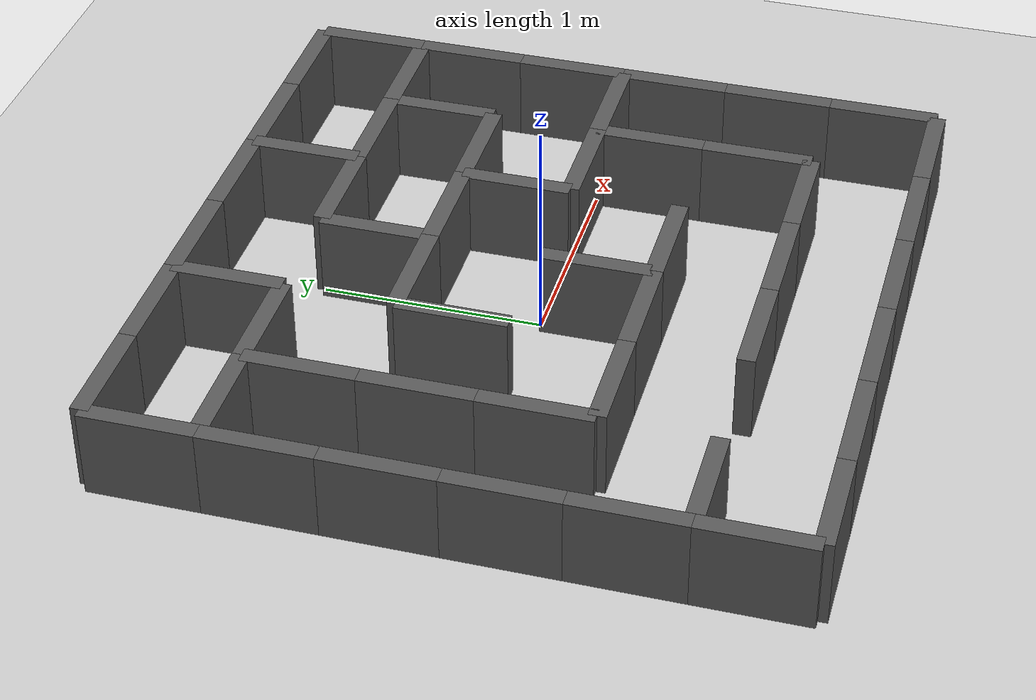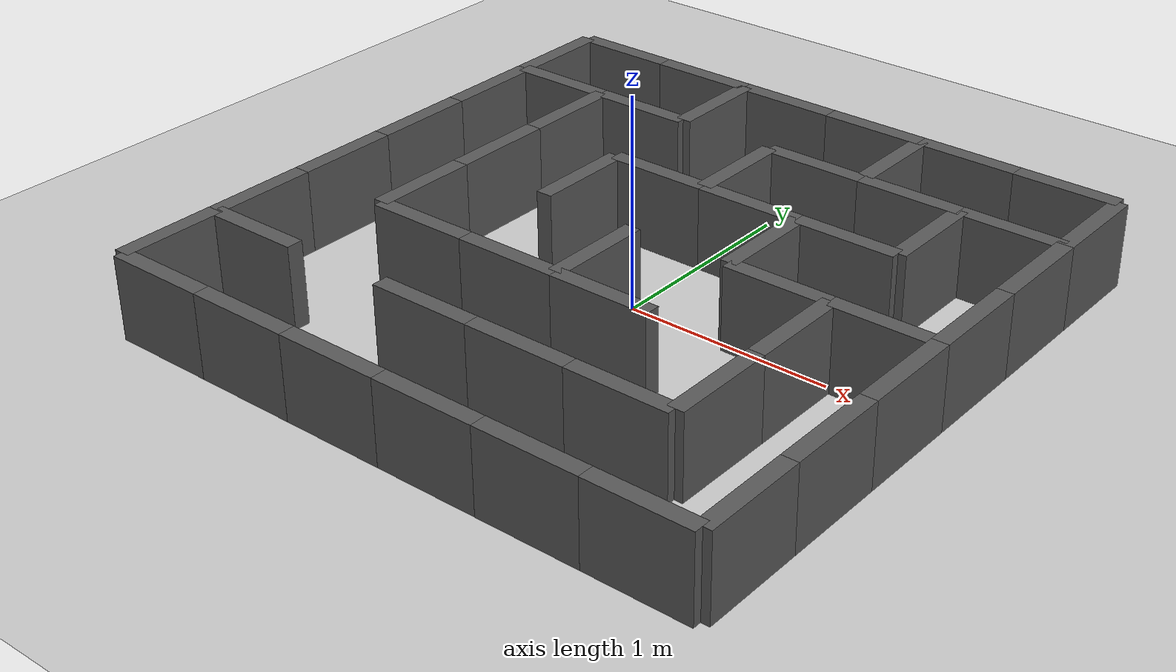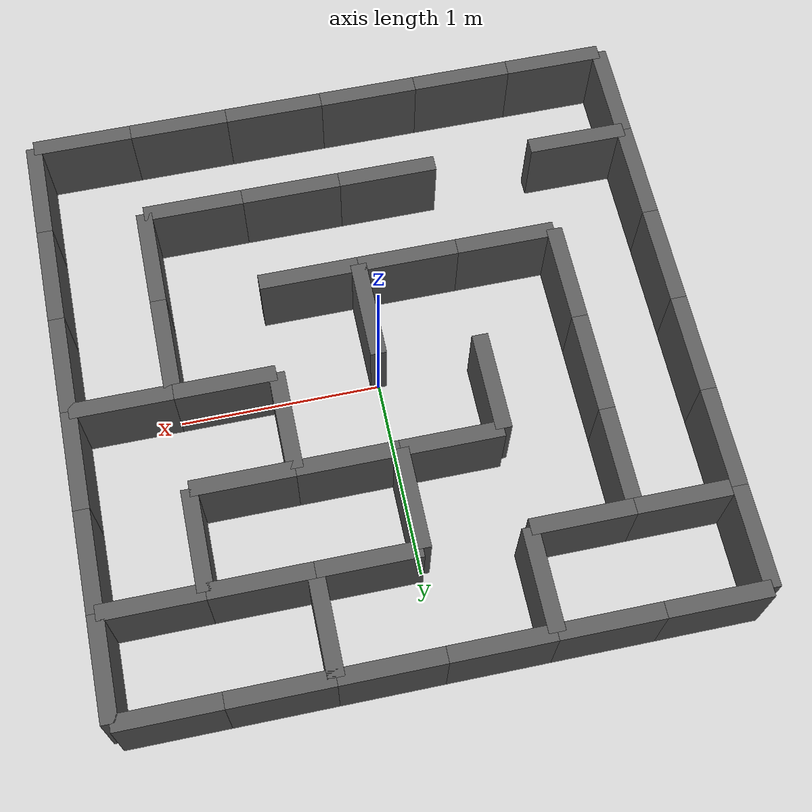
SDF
<?xml version="1.0" ?>
<sdf version="1.8">
  <world name="maze_world">
    <plugin filename="gz-sim-physics-system"
      name="gz::sim::systems::Physics"/>
    <plugin filename="gz-sim-user-commands-system"
      name="gz::sim::systems::UserCommands"/>
    <plugin filename="gz-sim-scene-broadcaster-system"
      name="gz::sim::systems::SceneBroadcaster"/>
    <plugin filename="gz-sim-sensors-system"
      name="gz::sim::systems::Sensors">
      <render_engine>ogre2</render_engine>
    </plugin>
    <physics name="1ms" type="ignored">
      <max_step_size>0.001</max_step_size>
      <real_time_factor>1.0</real_time_factor>
    </physics>
    <light type="directional" name="sun">
      <cast_shadows>true</cast_shadows>
      <pose>0 0 10 0 0 0</pose>
      <diffuse>0.8 0.8 0.8 1</diffuse>
      <specular>0.2 0.2 0.2 1</specular>
      <direction>-0.5 0.1 -0.9</direction>
    </light>
    <model name="ground_plane">
      <static>true</static>
      <link name="link">
        <collision name="collision"><geometry><plane><normal>0 0 1</normal><size>100 100</size></plane></geometry></collision>
        <visual name="visual"><geometry><plane><normal>0 0 1</normal><size>100 100</size></plane></geometry>
          <material><ambient>0.8 0.8 0.8 1</ambient><diffuse>0.8 0.8 0.8 1</diffuse></material>
        </visual>
      </link>
    </model>
    <!-- Assignment Figure 1: six by six cells, each 0.5 m wide. -->
    <model name="wall_00">
      <static>true</static>
      <pose>-1.25 1.50 0.2 0 0 0</pose>
      <link name="link">
        <collision name="collision"><geometry><box><size>0.5 0.08 0.4</size></box></geometry></collision>
        <visual name="visual"><geometry><box><size>0.5 0.08 0.4</size></box></geometry>
          <material><ambient>0.25 0.25 0.25 1</ambient><diffuse>0.35 0.35 0.35 1</diffuse></material>
        </visual>
      </link>
    </model>
    <model name="wall_01">
      <static>true</static>
      <pose>-1.25 -1.50 0.2 0 0 0</pose>
      <link name="link">
        <collision name="collision"><geometry><box><size>0.5 0.08 0.4</size></box></geometry></collision>
        <visual name="visual"><geometry><box><size>0.5 0.08 0.4</size></box></geometry>
          <material><ambient>0.25 0.25 0.25 1</ambient><diffuse>0.35 0.35 0.35 1</diffuse></material>
        </visual>
      </link>
    </model>
    <model name="wall_02">
      <static>true</static>
      <pose>-0.75 1.50 0.2 0 0 0</pose>
      <link name="link">
        <collision name="collision"><geometry><box><size>0.5 0.08 0.4</size></box></geometry></collision>
        <visual name="visual"><geometry><box><size>0.5 0.08 0.4</size></box></geometry>
          <material><ambient>0.25 0.25 0.25 1</ambient><diffuse>0.35 0.35 0.35 1</diffuse></material>
        </visual>
      </link>
    </model>
    <model name="wall_03">
      <static>true</static>
      <pose>-0.75 -1.50 0.2 0 0 0</pose>
      <link name="link">
        <collision name="collision"><geometry><box><size>0.5 0.08 0.4</size></box></geometry></collision>
        <visual name="visual"><geometry><box><size>0.5 0.08 0.4</size></box></geometry>
          <material><ambient>0.25 0.25 0.25 1</ambient><diffuse>0.35 0.35 0.35 1</diffuse></material>
        </visual>
      </link>
    </model>
    <model name="wall_04">
      <static>true</static>
      <pose>-0.25 1.50 0.2 0 0 0</pose>
      <link name="link">
        <collision name="collision"><geometry><box><size>0.5 0.08 0.4</size></box></geometry></collision>
        <visual name="visual"><geometry><box><size>0.5 0.08 0.4</size></box></geometry>
          <material><ambient>0.25 0.25 0.25 1</ambient><diffuse>0.35 0.35 0.35 1</diffuse></material>
        </visual>
      </link>
    </model>
    <model name="wall_05">
      <static>true</static>
      <pose>-0.25 -1.50 0.2 0 0 0</pose>
      <link name="link">
        <collision name="collision"><geometry><box><size>0.5 0.08 0.4</size></box></geometry></collision>
        <visual name="visual"><geometry><box><size>0.5 0.08 0.4</size></box></geometry>
          <material><ambient>0.25 0.25 0.25 1</ambient><diffuse>0.35 0.35 0.35 1</diffuse></material>
        </visual>
      </link>
    </model>
    <model name="wall_06">
      <static>true</static>
      <pose>0.25 1.50 0.2 0 0 0</pose>
      <link name="link">
        <collision name="collision"><geometry><box><size>0.5 0.08 0.4</size></box></geometry></collision>
        <visual name="visual"><geometry><box><size>0.5 0.08 0.4</size></box></geometry>
          <material><ambient>0.25 0.25 0.25 1</ambient><diffuse>0.35 0.35 0.35 1</diffuse></material>
        </visual>
      </link>
    </model>
    <model name="wall_07">
      <static>true</static>
      <pose>0.25 -1.50 0.2 0 0 0</pose>
      <link name="link">
        <collision name="collision"><geometry><box><size>0.5 0.08 0.4</size></box></geometry></collision>
        <visual name="visual"><geometry><box><size>0.5 0.08 0.4</size></box></geometry>
          <material><ambient>0.25 0.25 0.25 1</ambient><diffuse>0.35 0.35 0.35 1</diffuse></material>
        </visual>
      </link>
    </model>
    <model name="wall_08">
      <static>true</static>
      <pose>0.75 1.50 0.2 0 0 0</pose>
      <link name="link">
        <collision name="collision"><geometry><box><size>0.5 0.08 0.4</size></box></geometry></collision>
        <visual name="visual"><geometry><box><size>0.5 0.08 0.4</size></box></geometry>
          <material><ambient>0.25 0.25 0.25 1</ambient><diffuse>0.35 0.35 0.35 1</diffuse></material>
        </visual>
      </link>
    </model>
    <model name="wall_09">
      <static>true</static>
      <pose>0.75 -1.50 0.2 0 0 0</pose>
      <link name="link">
        <collision name="collision"><geometry><box><size>0.5 0.08 0.4</size></box></geometry></collision>
        <visual name="visual"><geometry><box><size>0.5 0.08 0.4</size></box></geometry>
          <material><ambient>0.25 0.25 0.25 1</ambient><diffuse>0.35 0.35 0.35 1</diffuse></material>
        </visual>
      </link>
    </model>
    <model name="wall_10">
      <static>true</static>
      <pose>1.25 1.50 0.2 0 0 0</pose>
      <link name="link">
        <collision name="collision"><geometry><box><size>0.5 0.08 0.4</size></box></geometry></collision>
        <visual name="visual"><geometry><box><size>0.5 0.08 0.4</size></box></geometry>
          <material><ambient>0.25 0.25 0.25 1</ambient><diffuse>0.35 0.35 0.35 1</diffuse></material>
        </visual>
      </link>
    </model>
    <model name="wall_11">
      <static>true</static>
      <pose>1.25 -1.50 0.2 0 0 0</pose>
      <link name="link">
        <collision name="collision"><geometry><box><size>0.5 0.08 0.4</size></box></geometry></collision>
        <visual name="visual"><geometry><box><size>0.5 0.08 0.4</size></box></geometry>
          <material><ambient>0.25 0.25 0.25 1</ambient><diffuse>0.35 0.35 0.35 1</diffuse></material>
        </visual>
      </link>
    </model>
    <model name="wall_12">
      <static>true</static>
      <pose>-1.25 1.00 0.2 0 0 0</pose>
      <link name="link">
        <collision name="collision"><geometry><box><size>0.5 0.08 0.4</size></box></geometry></collision>
        <visual name="visual"><geometry><box><size>0.5 0.08 0.4</size></box></geometry>
          <material><ambient>0.25 0.25 0.25 1</ambient><diffuse>0.35 0.35 0.35 1</diffuse></material>
        </visual>
      </link>
    </model>
    <model name="wall_13">
      <static>true</static>
      <pose>-0.75 1.00 0.2 0 0 0</pose>
      <link name="link">
        <collision name="collision"><geometry><box><size>0.5 0.08 0.4</size></box></geometry></collision>
        <visual name="visual"><geometry><box><size>0.5 0.08 0.4</size></box></geometry>
          <material><ambient>0.25 0.25 0.25 1</ambient><diffuse>0.35 0.35 0.35 1</diffuse></material>
        </visual>
      </link>
    </model>
    <model name="wall_14">
      <static>true</static>
      <pose>0.25 1.00 0.2 0 0 0</pose>
      <link name="link">
        <collision name="collision"><geometry><box><size>0.5 0.08 0.4</size></box></geometry></collision>
        <visual name="visual"><geometry><box><size>0.5 0.08 0.4</size></box></geometry>
          <material><ambient>0.25 0.25 0.25 1</ambient><diffuse>0.35 0.35 0.35 1</diffuse></material>
        </visual>
      </link>
    </model>
    <model name="wall_15">
      <static>true</static>
      <pose>0.75 1.00 0.2 0 0 0</pose>
      <link name="link">
        <collision name="collision"><geometry><box><size>0.5 0.08 0.4</size></box></geometry></collision>
        <visual name="visual"><geometry><box><size>0.5 0.08 0.4</size></box></geometry>
          <material><ambient>0.25 0.25 0.25 1</ambient><diffuse>0.35 0.35 0.35 1</diffuse></material>
        </visual>
      </link>
    </model>
    <model name="wall_16">
      <static>true</static>
      <pose>1.25 1.00 0.2 0 0 0</pose>
      <link name="link">
        <collision name="collision"><geometry><box><size>0.5 0.08 0.4</size></box></geometry></collision>
        <visual name="visual"><geometry><box><size>0.5 0.08 0.4</size></box></geometry>
          <material><ambient>0.25 0.25 0.25 1</ambient><diffuse>0.35 0.35 0.35 1</diffuse></material>
        </visual>
      </link>
    </model>
    <model name="wall_17">
      <static>true</static>
      <pose>-0.25 0.50 0.2 0 0 0</pose>
      <link name="link">
        <collision name="collision"><geometry><box><size>0.5 0.08 0.4</size></box></geometry></collision>
        <visual name="visual"><geometry><box><size>0.5 0.08 0.4</size></box></geometry>
          <material><ambient>0.25 0.25 0.25 1</ambient><diffuse>0.35 0.35 0.35 1</diffuse></material>
        </visual>
      </link>
    </model>
    <model name="wall_18">
      <static>true</static>
      <pose>0.25 0.50 0.2 0 0 0</pose>
      <link name="link">
        <collision name="collision"><geometry><box><size>0.5 0.08 0.4</size></box></geometry></collision>
        <visual name="visual"><geometry><box><size>0.5 0.08 0.4</size></box></geometry>
          <material><ambient>0.25 0.25 0.25 1</ambient><diffuse>0.35 0.35 0.35 1</diffuse></material>
        </visual>
      </link>
    </model>
    <model name="wall_19">
      <static>true</static>
      <pose>0.75 0.50 0.2 0 0 0</pose>
      <link name="link">
        <collision name="collision"><geometry><box><size>0.5 0.08 0.4</size></box></geometry></collision>
        <visual name="visual"><geometry><box><size>0.5 0.08 0.4</size></box></geometry>
          <material><ambient>0.25 0.25 0.25 1</ambient><diffuse>0.35 0.35 0.35 1</diffuse></material>
        </visual>
      </link>
    </model>
    <model name="wall_20">
      <static>true</static>
      <pose>0.75 0.00 0.2 0 0 0</pose>
      <link name="link">
        <collision name="collision"><geometry><box><size>0.5 0.08 0.4</size></box></geometry></collision>
        <visual name="visual"><geometry><box><size>0.5 0.08 0.4</size></box></geometry>
          <material><ambient>0.25 0.25 0.25 1</ambient><diffuse>0.35 0.35 0.35 1</diffuse></material>
        </visual>
      </link>
    </model>
    <model name="wall_21">
      <static>true</static>
      <pose>1.25 0.00 0.2 0 0 0</pose>
      <link name="link">
        <collision name="collision"><geometry><box><size>0.5 0.08 0.4</size></box></geometry></collision>
        <visual name="visual"><geometry><box><size>0.5 0.08 0.4</size></box></geometry>
          <material><ambient>0.25 0.25 0.25 1</ambient><diffuse>0.35 0.35 0.35 1</diffuse></material>
        </visual>
      </link>
    </model>
    <model name="wall_22">
      <static>true</static>
      <pose>-0.75 -0.50 0.2 0 0 0</pose>
      <link name="link">
        <collision name="collision"><geometry><box><size>0.5 0.08 0.4</size></box></geometry></collision>
        <visual name="visual"><geometry><box><size>0.5 0.08 0.4</size></box></geometry>
          <material><ambient>0.25 0.25 0.25 1</ambient><diffuse>0.35 0.35 0.35 1</diffuse></material>
        </visual>
      </link>
    </model>
    <model name="wall_23">
      <static>true</static>
      <pose>-0.25 -0.50 0.2 0 0 0</pose>
      <link name="link">
        <collision name="collision"><geometry><box><size>0.5 0.08 0.4</size></box></geometry></collision>
        <visual name="visual"><geometry><box><size>0.5 0.08 0.4</size></box></geometry>
          <material><ambient>0.25 0.25 0.25 1</ambient><diffuse>0.35 0.35 0.35 1</diffuse></material>
        </visual>
      </link>
    </model>
    <model name="wall_24">
      <static>true</static>
      <pose>0.25 -0.50 0.2 0 0 0</pose>
      <link name="link">
        <collision name="collision"><geometry><box><size>0.5 0.08 0.4</size></box></geometry></collision>
        <visual name="visual"><geometry><box><size>0.5 0.08 0.4</size></box></geometry>
          <material><ambient>0.25 0.25 0.25 1</ambient><diffuse>0.35 0.35 0.35 1</diffuse></material>
        </visual>
      </link>
    </model>
    <model name="wall_25">
      <static>true</static>
      <pose>-1.25 -1.00 0.2 0 0 0</pose>
      <link name="link">
        <collision name="collision"><geometry><box><size>0.5 0.08 0.4</size></box></geometry></collision>
        <visual name="visual"><geometry><box><size>0.5 0.08 0.4</size></box></geometry>
          <material><ambient>0.25 0.25 0.25 1</ambient><diffuse>0.35 0.35 0.35 1</diffuse></material>
        </visual>
      </link>
    </model>
    <model name="wall_26">
      <static>true</static>
      <pose>-0.25 -1.00 0.2 0 0 0</pose>
      <link name="link">
        <collision name="collision"><geometry><box><size>0.5 0.08 0.4</size></box></geometry></collision>
        <visual name="visual"><geometry><box><size>0.5 0.08 0.4</size></box></geometry>
          <material><ambient>0.25 0.25 0.25 1</ambient><diffuse>0.35 0.35 0.35 1</diffuse></material>
        </visual>
      </link>
    </model>
    <model name="wall_27">
      <static>true</static>
      <pose>0.25 -1.00 0.2 0 0 0</pose>
      <link name="link">
        <collision name="collision"><geometry><box><size>0.5 0.08 0.4</size></box></geometry></collision>
        <visual name="visual"><geometry><box><size>0.5 0.08 0.4</size></box></geometry>
          <material><ambient>0.25 0.25 0.25 1</ambient><diffuse>0.35 0.35 0.35 1</diffuse></material>
        </visual>
      </link>
    </model>
    <model name="wall_28">
      <static>true</static>
      <pose>0.75 -1.00 0.2 0 0 0</pose>
      <link name="link">
        <collision name="collision"><geometry><box><size>0.5 0.08 0.4</size></box></geometry></collision>
        <visual name="visual"><geometry><box><size>0.5 0.08 0.4</size></box></geometry>
          <material><ambient>0.25 0.25 0.25 1</ambient><diffuse>0.35 0.35 0.35 1</diffuse></material>
        </visual>
      </link>
    </model>
    <model name="wall_29">
      <static>true</static>
      <pose>-1.50 1.25 0.2 0 0 0</pose>
      <link name="link">
        <collision name="collision"><geometry><box><size>0.08 0.5 0.4</size></box></geometry></collision>
        <visual name="visual"><geometry><box><size>0.08 0.5 0.4</size></box></geometry>
          <material><ambient>0.25 0.25 0.25 1</ambient><diffuse>0.35 0.35 0.35 1</diffuse></material>
        </visual>
      </link>
    </model>
    <model name="wall_30">
      <static>true</static>
      <pose>1.50 1.25 0.2 0 0 0</pose>
      <link name="link">
        <collision name="collision"><geometry><box><size>0.08 0.5 0.4</size></box></geometry></collision>
        <visual name="visual"><geometry><box><size>0.08 0.5 0.4</size></box></geometry>
          <material><ambient>0.25 0.25 0.25 1</ambient><diffuse>0.35 0.35 0.35 1</diffuse></material>
        </visual>
      </link>
    </model>
    <model name="wall_31">
      <static>true</static>
      <pose>-1.50 0.75 0.2 0 0 0</pose>
      <link name="link">
        <collision name="collision"><geometry><box><size>0.08 0.5 0.4</size></box></geometry></collision>
        <visual name="visual"><geometry><box><size>0.08 0.5 0.4</size></box></geometry>
          <material><ambient>0.25 0.25 0.25 1</ambient><diffuse>0.35 0.35 0.35 1</diffuse></material>
        </visual>
      </link>
    </model>
    <model name="wall_32">
      <static>true</static>
      <pose>1.50 0.75 0.2 0 0 0</pose>
      <link name="link">
        <collision name="collision"><geometry><box><size>0.08 0.5 0.4</size></box></geometry></collision>
        <visual name="visual"><geometry><box><size>0.08 0.5 0.4</size></box></geometry>
          <material><ambient>0.25 0.25 0.25 1</ambient><diffuse>0.35 0.35 0.35 1</diffuse></material>
        </visual>
      </link>
    </model>
    <model name="wall_33">
      <static>true</static>
      <pose>-1.50 0.25 0.2 0 0 0</pose>
      <link name="link">
        <collision name="collision"><geometry><box><size>0.08 0.5 0.4</size></box></geometry></collision>
        <visual name="visual"><geometry><box><size>0.08 0.5 0.4</size></box></geometry>
          <material><ambient>0.25 0.25 0.25 1</ambient><diffuse>0.35 0.35 0.35 1</diffuse></material>
        </visual>
      </link>
    </model>
    <model name="wall_34">
      <static>true</static>
      <pose>1.50 0.25 0.2 0 0 0</pose>
      <link name="link">
        <collision name="collision"><geometry><box><size>0.08 0.5 0.4</size></box></geometry></collision>
        <visual name="visual"><geometry><box><size>0.08 0.5 0.4</size></box></geometry>
          <material><ambient>0.25 0.25 0.25 1</ambient><diffuse>0.35 0.35 0.35 1</diffuse></material>
        </visual>
      </link>
    </model>
    <model name="wall_35">
      <static>true</static>
      <pose>-1.50 -0.25 0.2 0 0 0</pose>
      <link name="link">
        <collision name="collision"><geometry><box><size>0.08 0.5 0.4</size></box></geometry></collision>
        <visual name="visual"><geometry><box><size>0.08 0.5 0.4</size></box></geometry>
          <material><ambient>0.25 0.25 0.25 1</ambient><diffuse>0.35 0.35 0.35 1</diffuse></material>
        </visual>
      </link>
    </model>
    <model name="wall_36">
      <static>true</static>
      <pose>1.50 -0.25 0.2 0 0 0</pose>
      <link name="link">
        <collision name="collision"><geometry><box><size>0.08 0.5 0.4</size></box></geometry></collision>
        <visual name="visual"><geometry><box><size>0.08 0.5 0.4</size></box></geometry>
          <material><ambient>0.25 0.25 0.25 1</ambient><diffuse>0.35 0.35 0.35 1</diffuse></material>
        </visual>
      </link>
    </model>
    <model name="wall_37">
      <static>true</static>
      <pose>-1.50 -0.75 0.2 0 0 0</pose>
      <link name="link">
        <collision name="collision"><geometry><box><size>0.08 0.5 0.4</size></box></geometry></collision>
        <visual name="visual"><geometry><box><size>0.08 0.5 0.4</size></box></geometry>
          <material><ambient>0.25 0.25 0.25 1</ambient><diffuse>0.35 0.35 0.35 1</diffuse></material>
        </visual>
      </link>
    </model>
    <model name="wall_38">
      <static>true</static>
      <pose>1.50 -0.75 0.2 0 0 0</pose>
      <link name="link">
        <collision name="collision"><geometry><box><size>0.08 0.5 0.4</size></box></geometry></collision>
        <visual name="visual"><geometry><box><size>0.08 0.5 0.4</size></box></geometry>
          <material><ambient>0.25 0.25 0.25 1</ambient><diffuse>0.35 0.35 0.35 1</diffuse></material>
        </visual>
      </link>
    </model>
    <model name="wall_39">
      <static>true</static>
      <pose>-1.50 -1.25 0.2 0 0 0</pose>
      <link name="link">
        <collision name="collision"><geometry><box><size>0.08 0.5 0.4</size></box></geometry></collision>
        <visual name="visual"><geometry><box><size>0.08 0.5 0.4</size></box></geometry>
          <material><ambient>0.25 0.25 0.25 1</ambient><diffuse>0.35 0.35 0.35 1</diffuse></material>
        </visual>
      </link>
    </model>
    <model name="wall_40">
      <static>true</static>
      <pose>1.50 -1.25 0.2 0 0 0</pose>
      <link name="link">
        <collision name="collision"><geometry><box><size>0.08 0.5 0.4</size></box></geometry></collision>
        <visual name="visual"><geometry><box><size>0.08 0.5 0.4</size></box></geometry>
          <material><ambient>0.25 0.25 0.25 1</ambient><diffuse>0.35 0.35 0.35 1</diffuse></material>
        </visual>
      </link>
    </model>
    <model name="wall_41">
      <static>true</static>
      <pose>-1.00 0.75 0.2 0 0 0</pose>
      <link name="link">
        <collision name="collision"><geometry><box><size>0.08 0.5 0.4</size></box></geometry></collision>
        <visual name="visual"><geometry><box><size>0.08 0.5 0.4</size></box></geometry>
          <material><ambient>0.25 0.25 0.25 1</ambient><diffuse>0.35 0.35 0.35 1</diffuse></material>
        </visual>
      </link>
    </model>
    <model name="wall_42">
      <static>true</static>
      <pose>-1.00 0.25 0.2 0 0 0</pose>
      <link name="link">
        <collision name="collision"><geometry><box><size>0.08 0.5 0.4</size></box></geometry></collision>
        <visual name="visual"><geometry><box><size>0.08 0.5 0.4</size></box></geometry>
          <material><ambient>0.25 0.25 0.25 1</ambient><diffuse>0.35 0.35 0.35 1</diffuse></material>
        </visual>
      </link>
    </model>
    <model name="wall_43">
      <static>true</static>
      <pose>-1.00 -0.25 0.2 0 0 0</pose>
      <link name="link">
        <collision name="collision"><geometry><box><size>0.08 0.5 0.4</size></box></geometry></collision>
        <visual name="visual"><geometry><box><size>0.08 0.5 0.4</size></box></geometry>
          <material><ambient>0.25 0.25 0.25 1</ambient><diffuse>0.35 0.35 0.35 1</diffuse></material>
        </visual>
      </link>
    </model>
    <model name="wall_44">
      <static>true</static>
      <pose>-0.50 1.25 0.2 0 0 0</pose>
      <link name="link">
        <collision name="collision"><geometry><box><size>0.08 0.5 0.4</size></box></geometry></collision>
        <visual name="visual"><geometry><box><size>0.08 0.5 0.4</size></box></geometry>
          <material><ambient>0.25 0.25 0.25 1</ambient><diffuse>0.35 0.35 0.35 1</diffuse></material>
        </visual>
      </link>
    </model>
    <model name="wall_45">
      <static>true</static>
      <pose>-0.50 0.25 0.2 0 0 0</pose>
      <link name="link">
        <collision name="collision"><geometry><box><size>0.08 0.5 0.4</size></box></geometry></collision>
        <visual name="visual"><geometry><box><size>0.08 0.5 0.4</size></box></geometry>
          <material><ambient>0.25 0.25 0.25 1</ambient><diffuse>0.35 0.35 0.35 1</diffuse></material>
        </visual>
      </link>
    </model>
    <model name="wall_46">
      <static>true</static>
      <pose>0.00 0.75 0.2 0 0 0</pose>
      <link name="link">
        <collision name="collision"><geometry><box><size>0.08 0.5 0.4</size></box></geometry></collision>
        <visual name="visual"><geometry><box><size>0.08 0.5 0.4</size></box></geometry>
          <material><ambient>0.25 0.25 0.25 1</ambient><diffuse>0.35 0.35 0.35 1</diffuse></material>
        </visual>
      </link>
    </model>
    <model name="wall_47">
      <static>true</static>
      <pose>0.00 -0.25 0.2 0 0 0</pose>
      <link name="link">
        <collision name="collision"><geometry><box><size>0.08 0.5 0.4</size></box></geometry></collision>
        <visual name="visual"><geometry><box><size>0.08 0.5 0.4</size></box></geometry>
          <material><ambient>0.25 0.25 0.25 1</ambient><diffuse>0.35 0.35 0.35 1</diffuse></material>
        </visual>
      </link>
    </model>
    <model name="wall_48">
      <static>true</static>
      <pose>0.50 1.25 0.2 0 0 0</pose>
      <link name="link">
        <collision name="collision"><geometry><box><size>0.08 0.5 0.4</size></box></geometry></collision>
        <visual name="visual"><geometry><box><size>0.08 0.5 0.4</size></box></geometry>
          <material><ambient>0.25 0.25 0.25 1</ambient><diffuse>0.35 0.35 0.35 1</diffuse></material>
        </visual>
      </link>
    </model>
    <model name="wall_49">
      <static>true</static>
      <pose>0.50 0.25 0.2 0 0 0</pose>
      <link name="link">
        <collision name="collision"><geometry><box><size>0.08 0.5 0.4</size></box></geometry></collision>
        <visual name="visual"><geometry><box><size>0.08 0.5 0.4</size></box></geometry>
          <material><ambient>0.25 0.25 0.25 1</ambient><diffuse>0.35 0.35 0.35 1</diffuse></material>
        </visual>
      </link>
    </model>
    <model name="wall_50">
      <static>true</static>
      <pose>1.00 0.75 0.2 0 0 0</pose>
      <link name="link">
        <collision name="collision"><geometry><box><size>0.08 0.5 0.4</size></box></geometry></collision>
        <visual name="visual"><geometry><box><size>0.08 0.5 0.4</size></box></geometry>
          <material><ambient>0.25 0.25 0.25 1</ambient><diffuse>0.35 0.35 0.35 1</diffuse></material>
        </visual>
      </link>
    </model>
    <model name="wall_51">
      <static>true</static>
      <pose>1.00 -0.25 0.2 0 0 0</pose>
      <link name="link">
        <collision name="collision"><geometry><box><size>0.08 0.5 0.4</size></box></geometry></collision>
        <visual name="visual"><geometry><box><size>0.08 0.5 0.4</size></box></geometry>
          <material><ambient>0.25 0.25 0.25 1</ambient><diffuse>0.35 0.35 0.35 1</diffuse></material>
        </visual>
      </link>
    </model>
    <model name="wall_52">
      <static>true</static>
      <pose>1.00 -0.75 0.2 0 0 0</pose>
      <link name="link">
        <collision name="collision"><geometry><box><size>0.08 0.5 0.4</size></box></geometry></collision>
        <visual name="visual"><geometry><box><size>0.08 0.5 0.4</size></box></geometry>
          <material><ambient>0.25 0.25 0.25 1</ambient><diffuse>0.35 0.35 0.35 1</diffuse></material>
        </visual>
      </link>
    </model>
  </world>
</sdf>
